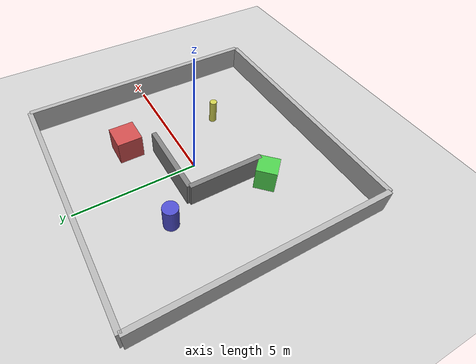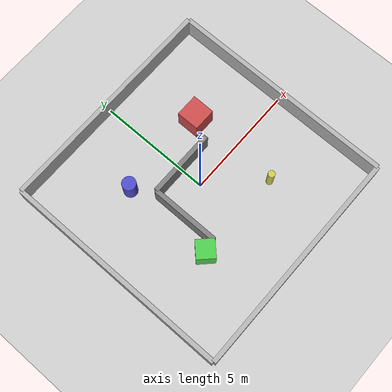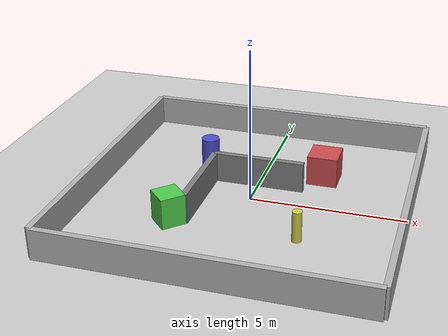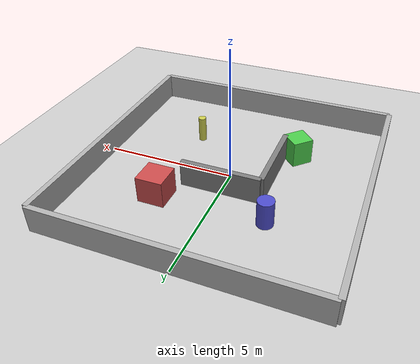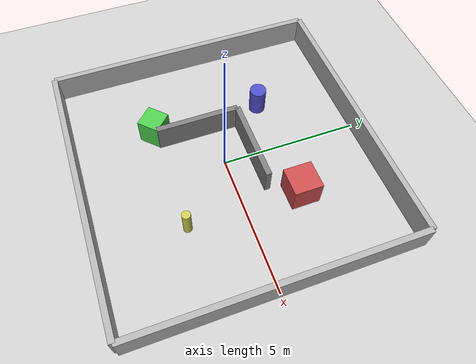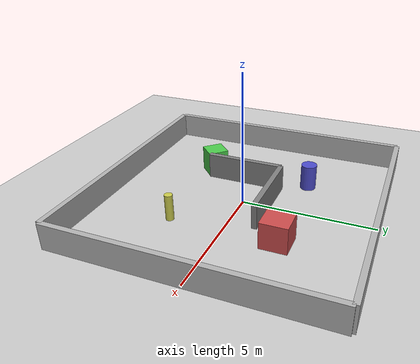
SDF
<?xml version="1.0"?>
<sdf version="1.6">
  <world name="test_world">

    <!-- Physics settings -->
    <physics type="ode">
      <max_step_size>0.001</max_step_size>
      <real_time_factor>1</real_time_factor>
      <real_time_update_rate>1000</real_time_update_rate>
    </physics>

    <!-- Lighting -->
    <include>
      <uri>model://sun</uri>
    </include>

    <!-- Ground plane -->
    <include>
      <uri>model://ground_plane</uri>
    </include>

    <!-- ========== OUTER WALLS (10m x 10m room) ========== -->

    <!-- North Wall -->
    <model name="wall_north">
      <static>true</static>
      <pose>0 5 0.5 0 0 0</pose>
      <link name="link">
        <collision name="collision">
          <geometry>
            <box>
              <size>10 0.2 1</size>
            </box>
          </geometry>
        </collision>
        <visual name="visual">
          <geometry>
            <box>
              <size>10 0.2 1</size>
            </box>
          </geometry>
          <material>
            <ambient>0.7 0.7 0.7 1</ambient>
            <diffuse>0.7 0.7 0.7 1</diffuse>
          </material>
        </visual>
      </link>
    </model>

    <!-- South Wall -->
    <model name="wall_south">
      <static>true</static>
      <pose>0 -5 0.5 0 0 0</pose>
      <link name="link">
        <collision name="collision">
          <geometry>
            <box>
              <size>10 0.2 1</size>
            </box>
          </geometry>
        </collision>
        <visual name="visual">
          <geometry>
            <box>
              <size>10 0.2 1</size>
            </box>
          </geometry>
          <material>
            <ambient>0.7 0.7 0.7 1</ambient>
            <diffuse>0.7 0.7 0.7 1</diffuse>
          </material>
        </visual>
      </link>
    </model>

    <!-- East Wall -->
    <model name="wall_east">
      <static>true</static>
      <pose>5 0 0.5 0 0 0</pose>
      <link name="link">
        <collision name="collision">
          <geometry>
            <box>
              <size>0.2 10 1</size>
            </box>
          </geometry>
        </collision>
        <visual name="visual">
          <geometry>
            <box>
              <size>0.2 10 1</size>
            </box>
          </geometry>
          <material>
            <ambient>0.7 0.7 0.7 1</ambient>
            <diffuse>0.7 0.7 0.7 1</diffuse>
          </material>
        </visual>
      </link>
    </model>

    <!-- West Wall -->
    <model name="wall_west">
      <static>true</static>
      <pose>-5 0 0.5 0 0 0</pose>
      <link name="link">
        <collision name="collision">
          <geometry>
            <box>
              <size>0.2 10 1</size>
            </box>
          </geometry>
        </collision>
        <visual name="visual">
          <geometry>
            <box>
              <size>0.2 10 1</size>
            </box>
          </geometry>
          <material>
            <ambient>0.7 0.7 0.7 1</ambient>
            <diffuse>0.7 0.7 0.7 1</diffuse>
          </material>
        </visual>
      </link>
    </model>

    <!-- ========== INTERIOR OBSTACLES ========== -->

    <!-- Box Obstacle 1 (Large) -->
    <model name="box_obstacle_1">
      <static>true</static>
      <pose>2 2 0.5 0 0 0</pose>
      <link name="link">
        <collision name="collision">
          <geometry>
            <box>
              <size>1 1 1.0</size>
            </box>
          </geometry>
        </collision>
        <visual name="visual">
          <geometry>
            <box>
              <size>1 1 1.0</size>
            </box>
          </geometry>
          <material>
            <ambient>0.8 0.3 0.3 1</ambient>
            <diffuse>0.8 0.3 0.3 1</diffuse>
          </material>
        </visual>
      </link>
    </model>

    <!-- Box Obstacle 2 (Medium) -->
    <model name="box_obstacle_2">
      <static>true</static>
      <pose>-2 -2 0.5 0 0 0.785</pose>
      <link name="link">
        <collision name="collision">
          <geometry>
            <box>
              <size>0.8 0.8 1.0</size>
            </box>
          </geometry>
        </collision>
        <visual name="visual">
          <geometry>
            <box>
              <size>0.8 0.8 1.0</size>
            </box>
          </geometry>
          <material>
            <ambient>0.3 0.8 0.3 1</ambient>
            <diffuse>0.3 0.8 0.3 1</diffuse>
          </material>
        </visual>
      </link>
    </model>

    <!-- Cylinder Obstacle 1 -->
    <model name="cylinder_obstacle_1">
      <static>true</static>
      <pose>-2 2 0.5 0 0 0</pose>
      <link name="link">
        <collision name="collision">
          <geometry>
            <cylinder>
              <radius>0.3</radius>
              <length>1.0</length>
            </cylinder>
          </geometry>
        </collision>
        <visual name="visual">
          <geometry>
            <cylinder>
              <radius>0.3</radius>
              <length>1.0</length>
            </cylinder>
          </geometry>
          <material>
            <ambient>0.3 0.3 0.8 1</ambient>
            <diffuse>0.3 0.3 0.8 1</diffuse>
          </material>
        </visual>
      </link>
    </model>

    <!-- Cylinder Obstacle 2 (Thin) -->
    <model name="cylinder_obstacle_2">
      <static>true</static>
      <pose>2 -2 0.5 0 0 0</pose>
      <link name="link">
        <collision name="collision">
          <geometry>
            <cylinder>
              <radius>0.15</radius>
              <length>1.0</length>
            </cylinder>
          </geometry>
        </collision>
        <visual name="visual">
          <geometry>
            <cylinder>
              <radius>0.15</radius>
              <length>1.0</length>
            </cylinder>
          </geometry>
          <material>
            <ambient>0.8 0.8 0.3 1</ambient>
            <diffuse>0.8 0.8 0.3 1</diffuse>
          </material>
        </visual>
      </link>
    </model>

    <!-- Interior Wall 1 (Creates corridor) -->
    <model name="interior_wall_1">
      <static>true</static>
      <pose>0 1 0.5 0 0 0</pose>
      <link name="link">
        <collision name="collision">
          <geometry>
            <box>
              <size>3 0.2 1</size>
            </box>
          </geometry>
        </collision>
        <visual name="visual">
          <geometry>
            <box>
              <size>3 0.2 1</size>
            </box>
          </geometry>
          <material>
            <ambient>0.5 0.5 0.5 1</ambient>
            <diffuse>0.5 0.5 0.5 1</diffuse>
          </material>
        </visual>
      </link>
    </model>

    <!-- Interior Wall 2 (L-shaped with wall 1) -->
    <model name="interior_wall_2">
      <static>true</static>
      <pose>-1.5 -0.5 0.5 0 0 0</pose>
      <link name="link">
        <collision name="collision">
          <geometry>
            <box>
              <size>0.2 3 1</size>
            </box>
          </geometry>
        </collision>
        <visual name="visual">
          <geometry>
            <box>
              <size>0.2 3 1</size>
            </box>
          </geometry>
          <material>
            <ambient>0.5 0.5 0.5 1</ambient>
            <diffuse>0.5 0.5 0.5 1</diffuse>
          </material>
        </visual>
      </link>
    </model>

  </world>
</sdf>
